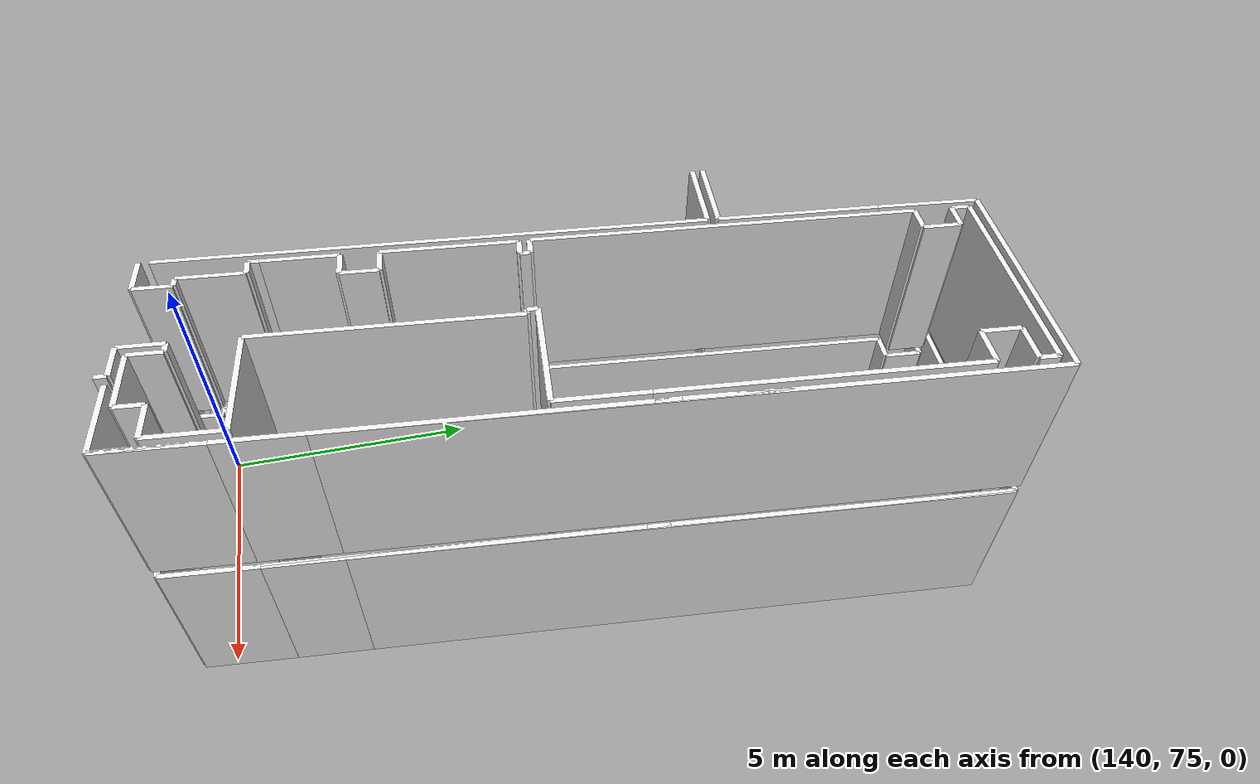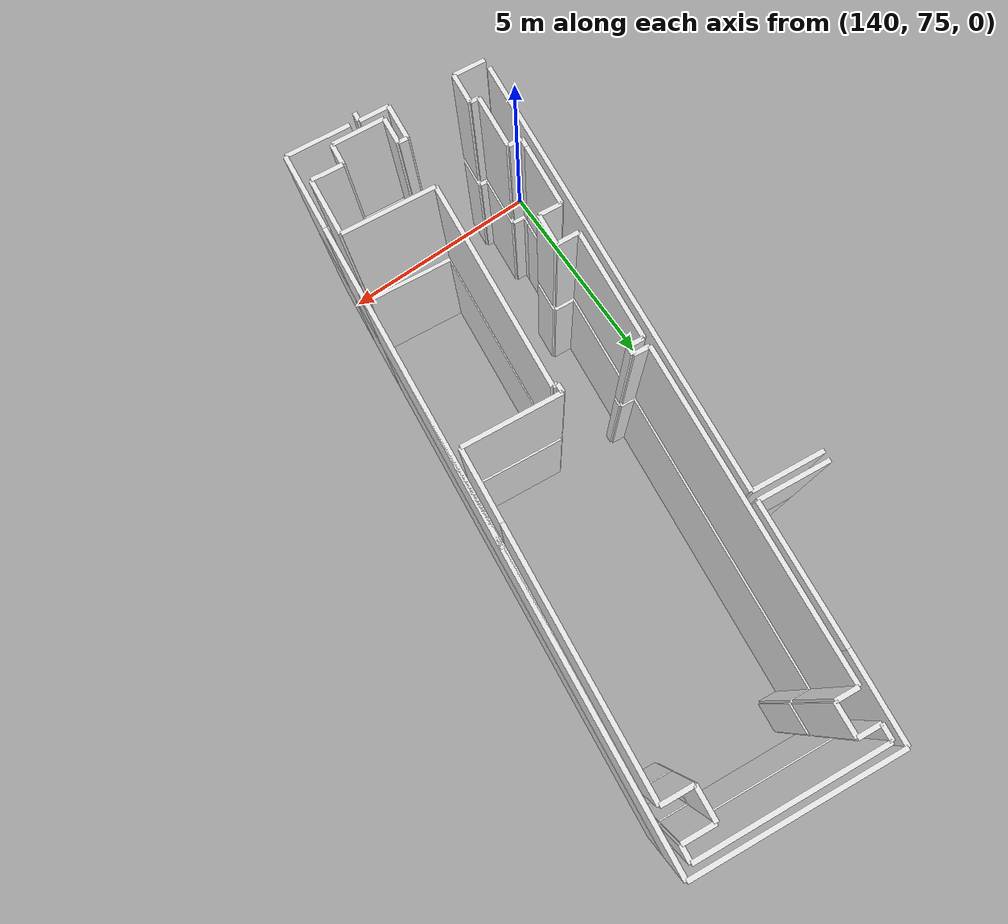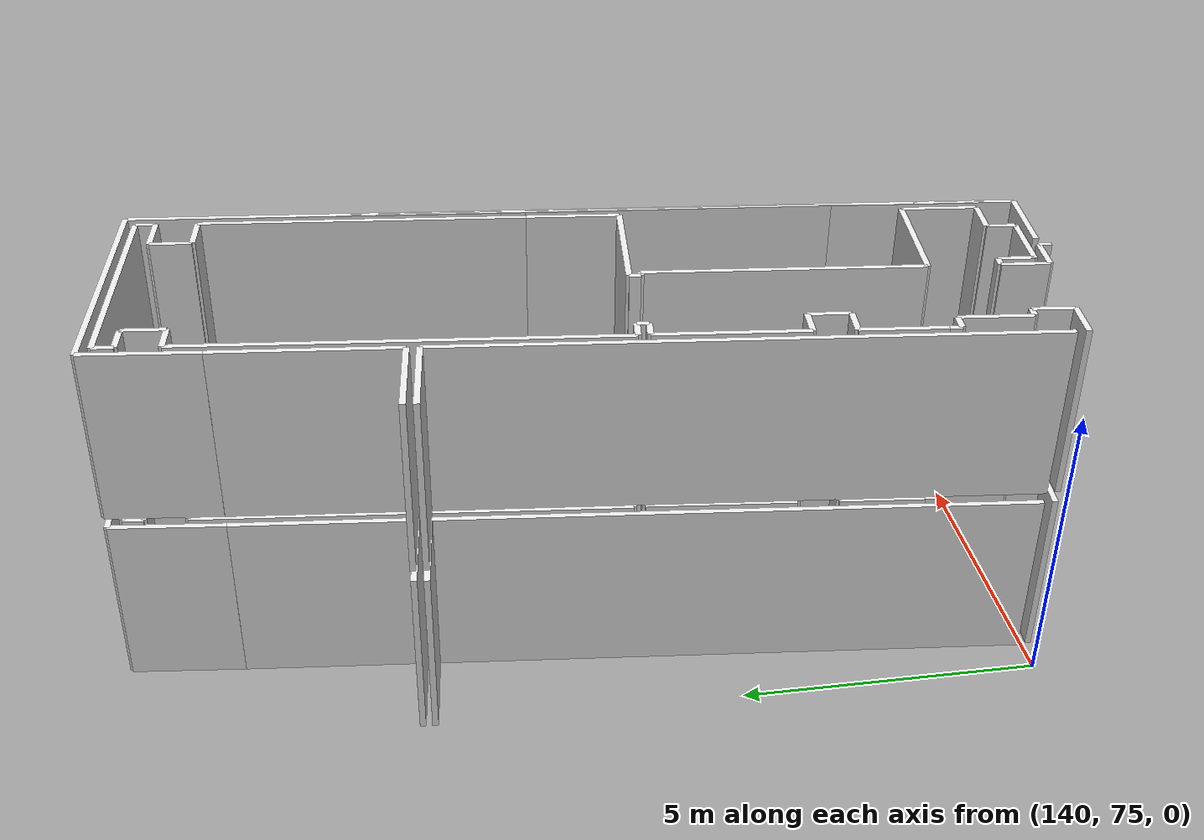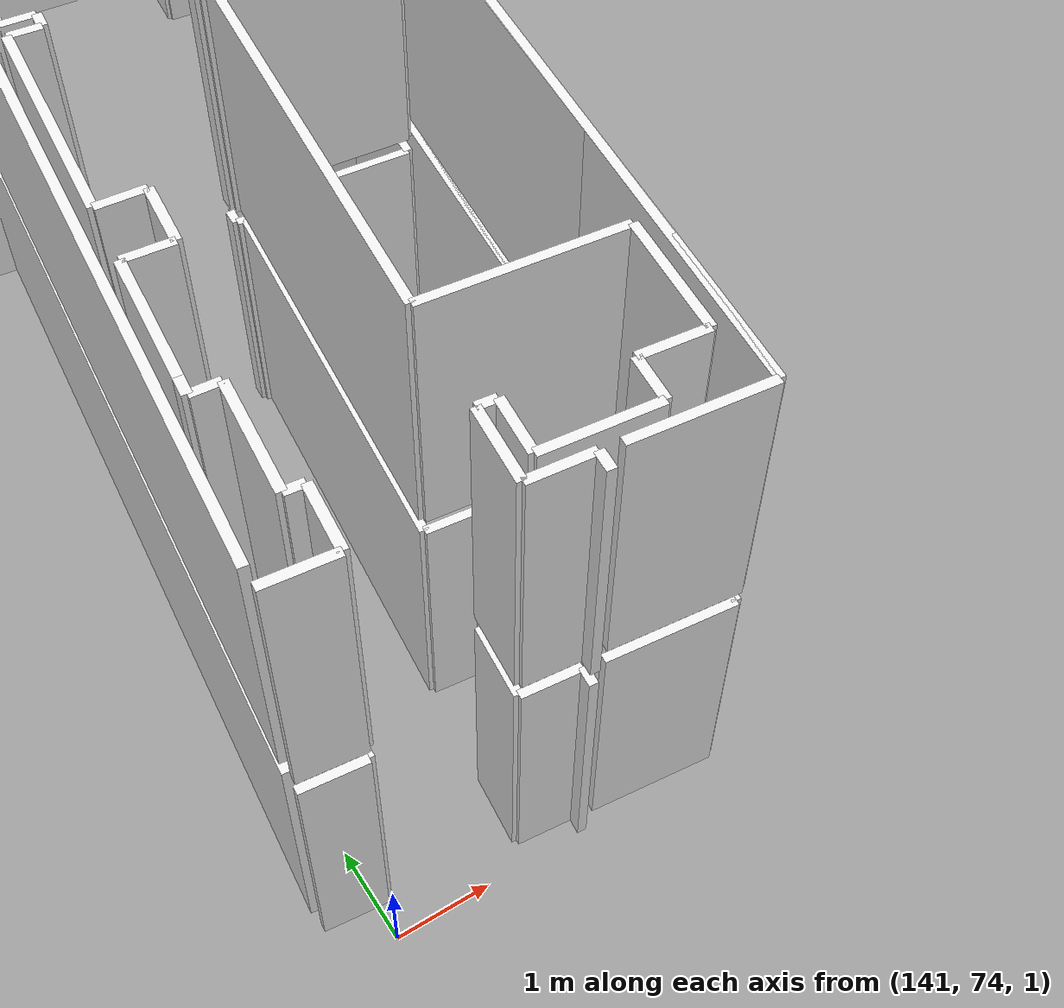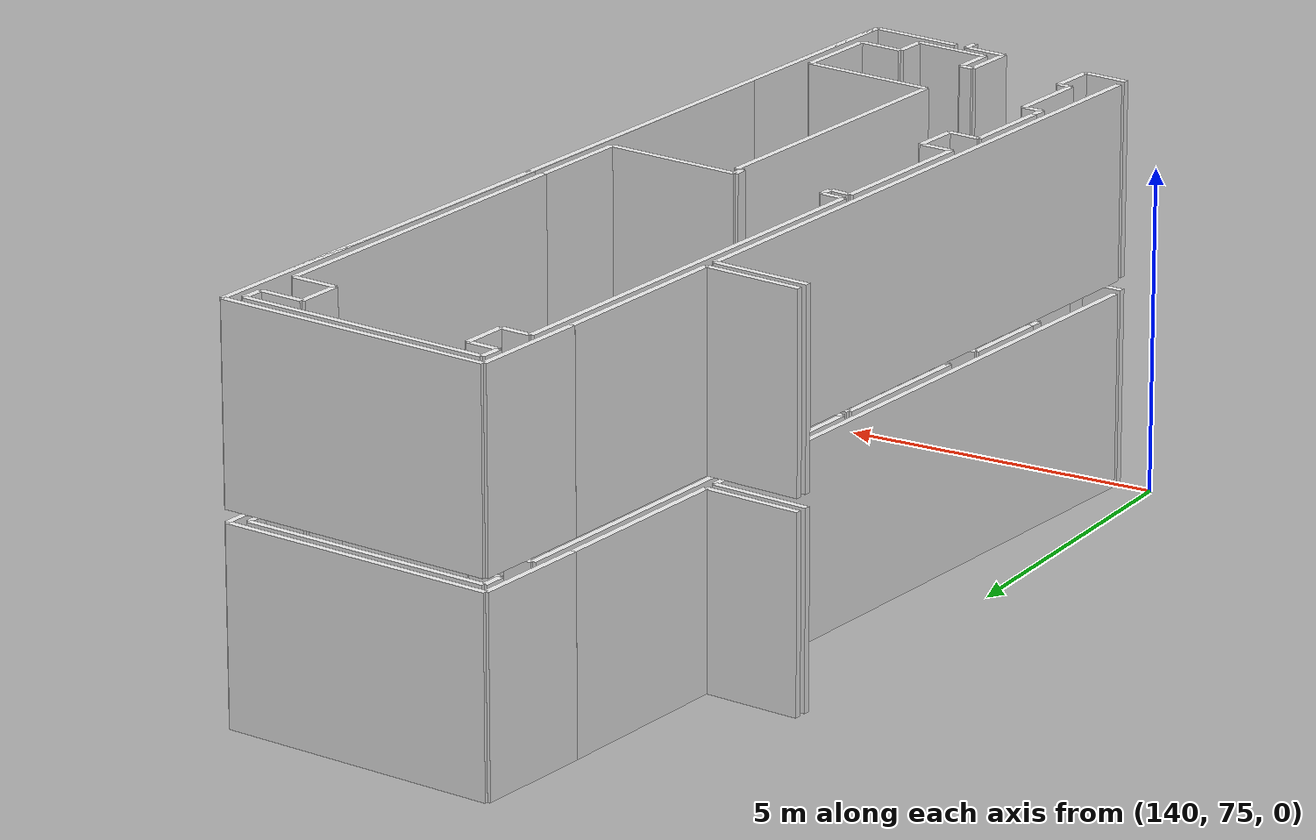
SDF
<sdf version="1.6">
 <world name="default">
  <model name="wall_140.8_85.0_0.0_link">
   <static>true</static>
   <pose>140.82499999998254 85.0 1.5 0 0 -0.10286148975795871</pose>
   <link name="link">
    <visual name="visual">
     <geometry><box><size>1.5582361823586293 0.1 3</size></box></geometry>
     <material>
      <script><uri>file://media/materials/scripts/gazebo.material</uri><name>Gazebo/White</name></script>
     </material>
    </visual>
   </link>
  </model>
  <model name="wall_141.1_80.0_0.0_link">
   <static>true</static>
   <pose>141.10499999998137 79.98999999999069 1.5 0 0 -1.670866626016522</pose>
   <link name="link">
    <visual name="visual">
     <geometry><box><size>9.909576176477497 0.1 3</size></box></geometry>
     <material>
      <script><uri>file://media/materials/scripts/gazebo.material</uri><name>Gazebo/White</name></script>
     </material>
    </visual>
   </link>
  </model>
  <model name="wall_142.9_75.4_0.0_link">
   <static>true</static>
   <pose>142.9100000000035 75.42999999993481 1.5 0 0 -0.09966865257760905</pose>
   <link name="link">
    <visual name="visual">
     <geometry><box><size>0.20099751243585498 0.1 3</size></box></geometry>
     <material>
      <script><uri>file://media/materials/scripts/gazebo.material</uri><name>Gazebo/White</name></script>
     </material>
    </visual>
   </link>
  </model>
  <model name="wall_143.0_75.1_0.0_link">
   <static>true</static>
   <pose>142.98000000001048 75.11999999987893 1.5 0 0 -1.6704649792668482</pose>
   <link name="link">
    <visual name="visual">
     <geometry><box><size>0.6029925373596918 0.1 3</size></box></geometry>
     <material>
      <script><uri>file://media/materials/scripts/gazebo.material</uri><name>Gazebo/White</name></script>
     </material>
    </visual>
   </link>
  </model>
  <model name="wall_143.5_74.8_0.0_link">
   <static>true</static>
   <pose>143.52499999999418 74.76499999989755 1.5 0 0 -0.09536204679293706</pose>
   <link name="link">
    <visual name="visual">
     <geometry><box><size>1.1552488908849852 0.1 3</size></box></geometry>
     <material>
      <script><uri>file://media/materials/scripts/gazebo.material</uri><name>Gazebo/White</name></script>
     </material>
    </visual>
   </link>
  </model>
  <model name="wall_144.1_75.0_0.0_link">
   <static>true</static>
   <pose>144.125 74.9550000000745 1.5 0 0 1.469107474983833</pose>
   <link name="link">
    <visual name="visual">
     <geometry><box><size>0.4925444144680799 0.1 3</size></box></geometry>
     <material>
      <script><uri>file://media/materials/scripts/gazebo.material</uri><name>Gazebo/White</name></script>
     </material>
    </visual>
   </link>
  </model>
  <model name="wall_144.5_75.2_0.0_link">
   <static>true</static>
   <pose>144.49500000002445 75.16500000003725 1.5 0 0 -0.10110337216347741</pose>
   <link name="link">
    <visual name="visual">
     <geometry><box><size>0.6935416354083843 0.1 3</size></box></geometry>
     <material>
      <script><uri>file://media/materials/scripts/gazebo.material</uri><name>Gazebo/White</name></script>
     </material>
    </visual>
   </link>
  </model>
  <model name="wall_144.9_75.8_0.0_link">
   <static>true</static>
   <pose>144.90499999999884 75.77499999990687 1.5 0 0 1.4703602147900217</pose>
   <link name="link">
    <visual name="visual">
     <geometry><box><size>1.2965338407007314 0.1 3</size></box></geometry>
     <material>
      <script><uri>file://media/materials/scripts/gazebo.material</uri><name>Gazebo/White</name></script>
     </material>
    </visual>
   </link>
  </model>
  <model name="wall_143.9_76.5_0.0_link">
   <static>true</static>
   <pose>143.94999999998254 76.52499999990687 1.5 0 0 3.039012801188522</pose>
   <link name="link">
    <visual name="visual">
     <geometry><box><size>2.050780339260853 0.1 3</size></box></geometry>
     <material>
      <script><uri>file://media/materials/scripts/gazebo.material</uri><name>Gazebo/White</name></script>
     </material>
    </visual>
   </link>
  </model>
  <model name="wall_143.2_78.9_0.0_link">
   <static>true</static>
   <pose>143.16500000000815 78.93999999994412 1.5 0 0 1.4694135127045715</pose>
   <link name="link">
    <visual name="visual">
     <geometry><box><size>4.6438453894440865 0.1 3</size></box></geometry>
     <material>
      <script><uri>file://media/materials/scripts/gazebo.material</uri><name>Gazebo/White</name></script>
     </material>
    </visual>
   </link>
  </model>
  <model name="wall_143.4_81.3_0.0_link">
   <static>true</static>
   <pose>143.35000000000582 81.25499999988824 1.5 0 0 3.041924003346254</pose>
   <link name="link">
    <visual name="visual">
     <geometry><box><size>0.10049875622371936 0.1 3</size></box></geometry>
     <material>
      <script><uri>file://media/materials/scripts/gazebo.material</uri><name>Gazebo/White</name></script>
     </material>
    </visual>
   </link>
  </model>
  <model name="wall_141.6_81.4_0.0_link">
   <static>true</static>
   <pose>141.63000000000466 81.43000000016764 1.5 0 0 3.0244839089037323</pose>
   <link name="link">
    <visual name="visual">
     <geometry><box><size>0.3423448553444534 0.1 3</size></box></geometry>
     <material>
      <script><uri>file://media/materials/scripts/gazebo.material</uri><name>Gazebo/White</name></script>
     </material>
    </visual>
   </link>
  </model>
  <model name="wall_141.3_80.2_0.0_link">
   <static>true</static>
   <pose>141.33500000002095 80.22500000009313 1.5 0 0 -1.6724851785502959</pose>
   <link name="link">
    <visual name="visual">
     <geometry><box><size>2.4627220713902527 0.1 3</size></box></geometry>
     <material>
      <script><uri>file://media/materials/scripts/gazebo.material</uri><name>Gazebo/White</name></script>
     </material>
    </visual>
   </link>
  </model>
  <model name="wall_141.5_79.0_0.0_link">
   <static>true</static>
   <pose>141.46000000002095 78.97999999998137 1.5 0 0 -0.07982998578626932</pose>
   <link name="link">
    <visual name="visual">
     <geometry><box><size>0.5015974481623489 0.1 3</size></box></geometry>
     <material>
      <script><uri>file://media/materials/scripts/gazebo.material</uri><name>Gazebo/White</name></script>
     </material>
    </visual>
   </link>
  </model>
  <model name="wall_141.7_78.6_0.0_link">
   <static>true</static>
   <pose>141.67500000001746 78.61499999999069 1.5 0 0 -1.6718996985493473</pose>
   <link name="link">
    <visual name="visual">
     <geometry><box><size>0.693541635321099 0.1 3</size></box></geometry>
     <material>
      <script><uri>file://media/materials/scripts/gazebo.material</uri><name>Gazebo/White</name></script>
     </material>
    </visual>
   </link>
  </model>
  <model name="wall_141.4_78.3_0.0_link">
   <static>true</static>
   <pose>141.39000000001397 78.2949999999255 1.5 0 0 3.0419240014674718</pose>
   <link name="link">
    <visual name="visual">
     <geometry><box><size>0.5024937810375105 0.1 3</size></box></geometry>
     <material>
      <script><uri>file://media/materials/scripts/gazebo.material</uri><name>Gazebo/White</name></script>
     </material>
    </visual>
   </link>
  </model>
  <model name="wall_141.1_77.6_0.0_link">
   <static>true</static>
   <pose>141.07000000000698 77.625 1.5 0 0 -1.671177229911867</pose>
   <link name="link">
    <visual name="visual">
     <geometry><box><size>1.3970325690805652 0.1 3</size></box></geometry>
     <material>
      <script><uri>file://media/materials/scripts/gazebo.material</uri><name>Gazebo/White</name></script>
     </material>
    </visual>
   </link>
  </model>
  <model name="wall_141.0_76.8_0.0_link">
   <static>true</static>
   <pose>140.9899999999907 76.8300000000745 1.5 0 0 -1.6704649792860586</pose>
   <link name="link">
    <visual name="visual">
     <geometry><box><size>0.20099751260961132 0.1 3</size></box></geometry>
     <material>
      <script><uri>file://media/materials/scripts/gazebo.material</uri><name>Gazebo/White</name></script>
     </material>
    </visual>
   </link>
  </model>
  <model name="wall_141.1_76.7_0.0_link">
   <static>true</static>
   <pose>141.13000000000466 76.71999999997206 1.5 0 0 -0.066568163827335</pose>
   <link name="link">
    <visual name="visual">
     <geometry><box><size>0.30066592761516014 0.1 3</size></box></geometry>
     <material>
      <script><uri>file://media/materials/scripts/gazebo.material</uri><name>Gazebo/White</name></script>
     </material>
    </visual>
   </link>
  </model>
  <model name="wall_141.2_76.1_0.0_link">
   <static>true</static>
   <pose>141.22000000000116 76.10999999986961 1.5 0 0 -1.6704649793148743</pose>
   <link name="link">
    <visual name="visual">
     <geometry><box><size>1.2059850747251755 0.1 3</size></box></geometry>
     <material>
      <script><uri>file://media/materials/scripts/gazebo.material</uri><name>Gazebo/White</name></script>
     </material>
    </visual>
   </link>
  </model>
  <model name="wall_141.3_75.5_0.0_link">
   <static>true</static>
   <pose>141.2599999999802 75.5 1.5 0 0 -0.09966865027235515</pose>
   <link name="link">
    <visual name="visual">
     <geometry><box><size>0.20099751238951993 0.1 3</size></box></geometry>
     <material>
      <script><uri>file://media/materials/scripts/gazebo.material</uri><name>Gazebo/White</name></script>
     </material>
    </visual>
   </link>
  </model>
  <model name="wall_141.3_75.1_0.0_link">
   <static>true</static>
   <pose>141.32499999998254 75.14500000001863 1.5 0 0 -1.6718996984815795</pose>
   <link name="link">
    <visual name="visual">
     <geometry><box><size>0.6935416357843824 0.1 3</size></box></geometry>
     <material>
      <script><uri>file://media/materials/scripts/gazebo.material</uri><name>Gazebo/White</name></script>
     </material>
    </visual>
   </link>
  </model>
  <model name="wall_140.9_74.8_0.0_link">
   <static>true</static>
   <pose>140.94000000000233 74.83499999996275 1.5 0 0 3.041924000670513</pose>
   <link name="link">
    <visual name="visual">
     <geometry><box><size>0.7034912934617817 0.1 3</size></box></geometry>
     <material>
      <script><uri>file://media/materials/scripts/gazebo.material</uri><name>Gazebo/White</name></script>
     </material>
    </visual>
   </link>
  </model>
  <model name="wall_143.4_74.5_0.0_link">
   <static>true</static>
   <pose>143.36999999999534 74.47500000009313 1.5 0 0 1.4758446203474973</pose>
   <link name="link">
    <visual name="visual">
     <geometry><box><size>0.21095023106197072 0.1 3</size></box></geometry>
     <material>
      <script><uri>file://media/materials/scripts/gazebo.material</uri><name>Gazebo/White</name></script>
     </material>
    </visual>
   </link>
  </model>
  <model name="wall_143.1_74.6_0.0_link">
   <static>true</static>
   <pose>143.05499999999302 74.61000000010245 1.5 0 0 3.0495458046444233</pose>
   <link name="link">
    <visual name="visual">
     <geometry><box><size>0.6527633568430243 0.1 3</size></box></geometry>
     <material>
      <script><uri>file://media/materials/scripts/gazebo.material</uri><name>Gazebo/White</name></script>
     </material>
    </visual>
   </link>
  </model>
  <model name="wall_142.8_75.0_0.0_link">
   <static>true</static>
   <pose>142.76999999998952 75.04000000003725 1.5 0 0 1.471127674260511</pose>
   <link name="link">
    <visual name="visual">
     <geometry><box><size>0.8039900495059528 0.1 3</size></box></geometry>
     <material>
      <script><uri>file://media/materials/scripts/gazebo.material</uri><name>Gazebo/White</name></script>
     </material>
    </visual>
   </link>
  </model>
  <model name="wall_143.3_81.4_0.0_link">
   <static>true</static>
   <pose>143.30499999999302 81.35499999998137 1.5 0 0 1.5182132652482727</pose>
   <link name="link">
    <visual name="visual">
     <geometry><box><size>0.19026297631410952 0.1 3</size></box></geometry>
     <material>
      <script><uri>file://media/materials/scripts/gazebo.material</uri><name>Gazebo/White</name></script>
     </material>
    </visual>
   </link>
  </model>
  <model name="wall_144.4_81.3_0.0_link">
   <static>true</static>
   <pose>144.38000000000466 81.34500000020489 1.5 0 0 -0.0978176596774659</pose>
   <link name="link">
    <visual name="visual">
     <geometry><box><size>2.1502790516684445 0.1 3</size></box></geometry>
     <material>
      <script><uri>file://media/materials/scripts/gazebo.material</uri><name>Gazebo/White</name></script>
     </material>
    </visual>
   </link>
  </model>
  <model name="wall_145.5_82.0_0.0_link">
   <static>true</static>
   <pose>145.52999999999884 82.03000000002794 1.5 0 0 1.4698745421188324</pose>
   <link name="link">
    <visual name="visual">
     <geometry><box><size>1.5880806020966798 0.1 3</size></box></geometry>
     <material>
      <script><uri>file://media/materials/scripts/gazebo.material</uri><name>Gazebo/White</name></script>
     </material>
    </visual>
   </link>
  </model>
  <model name="wall_145.9_85.6_0.0_link">
   <static>true</static>
   <pose>145.88999999998487 85.56999999983236 1.5 0 0 1.4693278202361642</pose>
   <link name="link">
    <visual name="visual">
     <geometry><box><size>5.528435583417554 0.1 3</size></box></geometry>
     <material>
      <script><uri>file://media/materials/scripts/gazebo.material</uri><name>Gazebo/White</name></script>
     </material>
    </visual>
   </link>
  </model>
  <model name="wall_145.8_88.4_0.0_link">
   <static>true</static>
   <pose>145.81999999997788 88.35499999998137 1.5 0 0 3.041924000678746</pose>
   <link name="link">
    <visual name="visual">
     <geometry><box><size>0.7034912935197005 0.1 3</size></box></geometry>
     <material>
      <script><uri>file://media/materials/scripts/gazebo.material</uri><name>Gazebo/White</name></script>
     </material>
    </visual>
   </link>
  </model>
  <model name="wall_145.5_88.7_0.0_link">
   <static>true</static>
   <pose>145.50499999997555 88.73999999999069 1.5 0 0 1.4711276742543362</pose>
   <link name="link">
    <visual name="visual">
     <geometry><box><size>0.7034912932011471 0.1 3</size></box></geometry>
     <material>
      <script><uri>file://media/materials/scripts/gazebo.material</uri><name>Gazebo/White</name></script>
     </material>
    </visual>
   </link>
  </model>
  <model name="wall_145.9_89.1_0.0_link">
   <static>true</static>
   <pose>145.88999999998487 89.05499999993481 1.5 0 0 -0.0996686522524036</pose>
   <link name="link">
    <visual name="visual">
     <geometry><box><size>0.7034912934733655 0.1 3</size></box></geometry>
     <material>
      <script><uri>file://media/materials/scripts/gazebo.material</uri><name>Gazebo/White</name></script>
     </material>
    </visual>
   </link>
  </model>
  <model name="wall_146.3_89.2_0.0_link">
   <static>true</static>
   <pose>146.2600000000093 89.18999999994412 1.5 0 0 1.4536875820691035</pose>
   <link name="link">
    <visual name="visual">
     <geometry><box><size>0.3423448552288355 0.1 3</size></box></geometry>
     <material>
      <script><uri>file://media/materials/scripts/gazebo.material</uri><name>Gazebo/White</name></script>
     </material>
    </visual>
   </link>
  </model>
  <model name="wall_144.3_89.6_0.0_link">
   <static>true</static>
   <pose>144.2850000000035 89.55999999982305 1.5 0 0 3.041675862170233</pose>
   <link name="link">
    <visual name="visual">
     <geometry><box><size>4.01000000003936 0.1 3</size></box></geometry>
     <material>
      <script><uri>file://media/materials/scripts/gazebo.material</uri><name>Gazebo/White</name></script>
     </material>
    </visual>
   </link>
  </model>
  <model name="wall_142.3_89.6_0.0_link">
   <static>true</static>
   <pose>142.26999999998952 89.58999999985099 1.5 0 0 -1.6879050713518278</pose>
   <link name="link">
    <visual name="visual">
     <geometry><box><size>0.34234485522203445 0.1 3</size></box></geometry>
     <material>
      <script><uri>file://media/materials/scripts/gazebo.material</uri><name>Gazebo/White</name></script>
     </material>
    </visual>
   </link>
  </model>
  <model name="wall_142.5_89.4_0.0_link">
   <static>true</static>
   <pose>142.5 89.39500000001863 1.5 0 0 -0.0996686521223214</pose>
   <link name="link">
    <visual name="visual">
     <geometry><box><size>0.5024937810375105 0.1 3</size></box></geometry>
     <material>
      <script><uri>file://media/materials/scripts/gazebo.material</uri><name>Gazebo/White</name></script>
     </material>
    </visual>
   </link>
  </model>
  <model name="wall_142.7_89.0_0.0_link">
   <static>true</static>
   <pose>142.7149999999965 89.02000000001863 1.5 0 0 -1.6704649792695925</pose>
   <link name="link">
    <visual name="visual">
     <geometry><box><size>0.7034912936644975 0.1 3</size></box></geometry>
     <material>
      <script><uri>file://media/materials/scripts/gazebo.material</uri><name>Gazebo/White</name></script>
     </material>
    </visual>
   </link>
  </model>
  <model name="wall_142.4_88.7_0.0_link">
   <static>true</static>
   <pose>142.42999999999302 88.69500000006519 1.5 0 0 3.0419240005453703</pose>
   <link name="link">
    <visual name="visual">
     <geometry><box><size>0.5024937810838455 0.1 3</size></box></geometry>
     <material>
      <script><uri>file://media/materials/scripts/gazebo.material</uri><name>Gazebo/White</name></script>
     </material>
    </visual>
   </link>
  </model>
  <model name="wall_141.8_85.2_0.0_link">
   <static>true</static>
   <pose>141.82000000000698 85.18000000016764 1.5 0 0 -1.6721428300555992</pose>
   <link name="link">
    <visual name="visual">
     <geometry><box><size>7.1165160015990105 0.1 3</size></box></geometry>
     <material>
      <script><uri>file://media/materials/scripts/gazebo.material</uri><name>Gazebo/White</name></script>
     </material>
    </visual>
   </link>
  </model>
  <model name="wall_141.6_81.6_0.0_link">
   <static>true</static>
   <pose>141.64000000001397 81.62000000011176 1.5 0 0 -0.11065722128037307</pose>
   <link name="link">
    <visual name="visual">
     <geometry><box><size>0.3622154055157262 0.1 3</size></box></geometry>
     <material>
      <script><uri>file://media/materials/scripts/gazebo.material</uri><name>Gazebo/White</name></script>
     </material>
    </visual>
   </link>
  </model>
  <model name="wall_141.8_81.5_0.0_link">
   <static>true</static>
   <pose>141.80999999999767 81.50500000012107 1.5 0 0 -1.675673265652709</pose>
   <link name="link">
    <visual name="visual">
     <geometry><box><size>0.19104973169180559 0.1 3</size></box></geometry>
     <material>
      <script><uri>file://media/materials/scripts/gazebo.material</uri><name>Gazebo/White</name></script>
     </material>
    </visual>
   </link>
  </model>
  <model name="wall_140.8_85.2_0.0_link">
   <static>true</static>
   <pose>140.84500000000116 85.19999999995343 1.5 0 0 -0.10286148946069955</pose>
   <link name="link">
    <visual name="visual">
     <geometry><box><size>1.558236182310815 0.1 3</size></box></geometry>
     <material>
      <script><uri>file://media/materials/scripts/gazebo.material</uri><name>Gazebo/White</name></script>
     </material>
    </visual>
   </link>
  </model>
  <model name="wall_141.8_86.6_0.0_link">
   <static>true</static>
   <pose>141.76999999998952 86.61499999999069 1.5 0 0 1.4707965484838321</pose>
   <link name="link">
    <visual name="visual">
     <geometry><box><size>3.005012478933323 0.1 3</size></box></geometry>
     <material>
      <script><uri>file://media/materials/scripts/gazebo.material</uri><name>Gazebo/White</name></script>
     </material>
    </visual>
   </link>
  </model>
  <model name="wall_144.3_74.5_0.0_link">
   <static>true</static>
   <pose>144.27999999999884 74.47999999998137 1.5 0 0 -0.09966865225652011</pose>
   <link name="link">
    <visual name="visual">
     <geometry><box><size>1.4069825868888122 0.1 3</size></box></geometry>
     <material>
      <script><uri>file://media/materials/scripts/gazebo.material</uri><name>Gazebo/White</name></script>
     </material>
    </visual>
   </link>
  </model>
  <model name="wall_145.1_75.3_0.0_link">
   <static>true</static>
   <pose>145.06999999997788 75.2750000001397 1.5 0 0 1.4671231190540195</pose>
   <link name="link">
    <visual name="visual">
     <geometry><box><size>1.7393389548713725 0.1 3</size></box></geometry>
     <material>
      <script><uri>file://media/materials/scripts/gazebo.material</uri><name>Gazebo/White</name></script>
     </material>
    </visual>
   </link>
  </model>
  <model name="wall_145.5_79.5_0.0_link">
   <static>true</static>
   <pose>145.48499999998603 79.46999999997206 1.5 0 0 1.473506851962698</pose>
   <link name="link">
    <visual name="visual">
     <geometry><box><size>6.691644042820307 0.1 3</size></box></geometry>
     <material>
      <script><uri>file://media/materials/scripts/gazebo.material</uri><name>Gazebo/White</name></script>
     </material>
    </visual>
   </link>
  </model>
  <model name="wall_145.8_83.0_0.0_link">
   <static>true</static>
   <pose>145.8299999999872 83.01000000000931 1.5 0 0 1.4758446205894842</pose>
   <link name="link">
    <visual name="visual">
     <geometry><box><size>0.42190046258198655 0.1 3</size></box></geometry>
     <material>
      <script><uri>file://media/materials/scripts/gazebo.material</uri><name>Gazebo/White</name></script>
     </material>
    </visual>
   </link>
  </model>
  <model name="wall_146.2_86.4_0.0_link">
   <static>true</static>
   <pose>146.17999999999302 86.38000000012107 1.5 0 0 1.4667431110995115</pose>
   <link name="link">
    <visual name="visual">
     <geometry><box><size>6.354368575863701 0.1 3</size></box></geometry>
     <material>
      <script><uri>file://media/materials/scripts/gazebo.material</uri><name>Gazebo/White</name></script>
     </material>
    </visual>
   </link>
  </model>
  <model name="wall_144.3_89.8_0.0_link">
   <static>true</static>
   <pose>144.32000000000698 89.76500000013039 1.5 0 0 3.0392121432977204</pose>
   <link name="link">
    <visual name="visual">
     <geometry><box><size>4.403055757108741 0.1 3</size></box></geometry>
     <material>
      <script><uri>file://media/materials/scripts/gazebo.material</uri><name>Gazebo/White</name></script>
     </material>
    </visual>
   </link>
  </model>
  <model name="wall_142.0_89.1_0.0_link">
   <static>true</static>
   <pose>142.02499999999418 89.05000000004657 1.5 0 0 -1.682037319054423</pose>
   <link name="link">
    <visual name="visual">
     <geometry><box><size>1.8916923643498365 0.1 3</size></box></geometry>
     <material>
      <script><uri>file://media/materials/scripts/gazebo.material</uri><name>Gazebo/White</name></script>
     </material>
    </visual>
   </link>
  </model>
  <model name="wall_145.7_82.0_0.0_link">
   <static>true</static>
   <pose>145.74499999999534 81.97500000009313 1.5 0 0 -1.6715773258821318</pose>
   <link name="link">
    <visual name="visual">
     <geometry><box><size>15.2071627858948 0.1 3</size></box></geometry>
     <material>
      <script><uri>file://media/materials/scripts/gazebo.material</uri><name>Gazebo/White</name></script>
     </material>
    </visual>
   </link>
  </model>
  <model name="wall_140.8_85.0_3.2_link">
   <static>true</static>
   <pose>140.82499999998254 85.0 4.7 0 0 -0.10286148975795871</pose>
   <link name="link">
    <visual name="visual">
     <geometry><box><size>1.5582361823586293 0.1 3</size></box></geometry>
     <material>
      <script><uri>file://media/materials/scripts/gazebo.material</uri><name>Gazebo/White</name></script>
     </material>
    </visual>
   </link>
  </model>
  <model name="wall_141.1_80.0_3.2_link">
   <static>true</static>
   <pose>141.10499999998137 79.98999999999069 4.7 0 0 -1.670866626016522</pose>
   <link name="link">
    <visual name="visual">
     <geometry><box><size>9.909576176477497 0.1 3</size></box></geometry>
     <material>
      <script><uri>file://media/materials/scripts/gazebo.material</uri><name>Gazebo/White</name></script>
     </material>
    </visual>
   </link>
  </model>
  <model name="wall_142.9_75.4_3.2_link">
   <static>true</static>
   <pose>142.9100000000035 75.42999999993481 4.7 0 0 -0.09966865257760905</pose>
   <link name="link">
    <visual name="visual">
     <geometry><box><size>0.20099751243585498 0.1 3</size></box></geometry>
     <material>
      <script><uri>file://media/materials/scripts/gazebo.material</uri><name>Gazebo/White</name></script>
     </material>
    </visual>
   </link>
  </model>
  <model name="wall_143.0_75.1_3.2_link">
   <static>true</static>
   <pose>142.98000000001048 75.11999999987893 4.7 0 0 -1.6704649792668482</pose>
   <link name="link">
    <visual name="visual">
     <geometry><box><size>0.6029925373596918 0.1 3</size></box></geometry>
     <material>
      <script><uri>file://media/materials/scripts/gazebo.material</uri><name>Gazebo/White</name></script>
     </material>
    </visual>
   </link>
  </model>
  <model name="wall_143.5_74.8_3.2_link">
   <static>true</static>
   <pose>143.52499999999418 74.76499999989755 4.7 0 0 -0.09536204679293706</pose>
   <link name="link">
    <visual name="visual">
     <geometry><box><size>1.1552488908849852 0.1 3</size></box></geometry>
     <material>
      <script><uri>file://media/materials/scripts/gazebo.material</uri><name>Gazebo/White</name></script>
     </material>
    </visual>
   </link>
  </model>
  <model name="wall_144.1_75.0_3.2_link">
   <static>true</static>
   <pose>144.125 74.9550000000745 4.7 0 0 1.469107474983833</pose>
   <link name="link">
    <visual name="visual">
     <geometry><box><size>0.4925444144680799 0.1 3</size></box></geometry>
     <material>
      <script><uri>file://media/materials/scripts/gazebo.material</uri><name>Gazebo/White</name></script>
     </material>
    </visual>
   </link>
  </model>
  <model name="wall_144.5_75.2_3.2_link">
   <static>true</static>
   <pose>144.49500000002445 75.16500000003725 4.7 0 0 -0.10110337216347741</pose>
   <link name="link">
    <visual name="visual">
     <geometry><box><size>0.6935416354083843 0.1 3</size></box></geometry>
     <material>
      <script><uri>file://media/materials/scripts/gazebo.material</uri><name>Gazebo/White</name></script>
     </material>
    </visual>
   </link>
  </model>
  <model name="wall_144.9_75.8_3.2_link">
   <static>true</static>
   <pose>144.90499999999884 75.77499999990687 4.7 0 0 1.4703602147900217</pose>
   <link name="link">
    <visual name="visual">
     <geometry><box><size>1.2965338407007314 0.1 3</size></box></geometry>
     <material>
      <script><uri>file://media/materials/scripts/gazebo.material</uri><name>Gazebo/White</name></script>
     </material>
    </visual>
   </link>
  </model>
  <model name="wall_143.9_76.5_3.2_link">
   <static>true</static>
   <pose>143.94999999998254 76.52499999990687 4.7 0 0 3.039012801188522</pose>
   <link name="link">
    <visual name="visual">
     <geometry><box><size>2.050780339260853 0.1 3</size></box></geometry>
     <material>
      <script><uri>file://media/materials/scripts/gazebo.material</uri><name>Gazebo/White</name></script>
     </material>
    </visual>
   </link>
  </model>
  <model name="wall_143.2_78.9_3.2_link">
   <static>true</static>
   <pose>143.16500000000815 78.93999999994412 4.7 0 0 1.4694135127045715</pose>
   <link name="link">
    <visual name="visual">
     <geometry><box><size>4.6438453894440865 0.1 3</size></box></geometry>
     <material>
      <script><uri>file://media/materials/scripts/gazebo.material</uri><name>Gazebo/White</name></script>
     </material>
    </visual>
   </link>
  </model>
  <model name="wall_143.4_81.3_3.2_link">
   <static>true</static>
   <pose>143.35000000000582 81.25499999988824 4.7 0 0 3.041924003346254</pose>
   <link name="link">
    <visual name="visual">
     <geometry><box><size>0.10049875622371936 0.1 3</size></box></geometry>
     <material>
      <script><uri>file://media/materials/scripts/gazebo.material</uri><name>Gazebo/White</name></script>
     </material>
    </visual>
   </link>
  </model>
  <model name="wall_141.6_81.4_3.2_link">
   <static>true</static>
   <pose>141.63000000000466 81.43000000016764 4.7 0 0 3.0244839089037323</pose>
   <link name="link">
    <visual name="visual">
     <geometry><box><size>0.3423448553444534 0.1 3</size></box></geometry>
     <material>
      <script><uri>file://media/materials/scripts/gazebo.material</uri><name>Gazebo/White</name></script>
     </material>
    </visual>
   </link>
  </model>
  <model name="wall_141.3_80.2_3.2_link">
   <static>true</static>
   <pose>141.33500000002095 80.22500000009313 4.7 0 0 -1.6724851785502959</pose>
   <link name="link">
    <visual name="visual">
     <geometry><box><size>2.4627220713902527 0.1 3</size></box></geometry>
     <material>
      <script><uri>file://media/materials/scripts/gazebo.material</uri><name>Gazebo/White</name></script>
     </material>
    </visual>
   </link>
  </model>
  <model name="wall_141.5_79.0_3.2_link">
   <static>true</static>
   <pose>141.46000000002095 78.97999999998137 4.7 0 0 -0.07982998578626932</pose>
   <link name="link">
    <visual name="visual">
     <geometry><box><size>0.5015974481623489 0.1 3</size></box></geometry>
     <material>
      <script><uri>file://media/materials/scripts/gazebo.material</uri><name>Gazebo/White</name></script>
     </material>
    </visual>
   </link>
  </model>
  <model name="wall_141.7_78.6_3.2_link">
   <static>true</static>
   <pose>141.67500000001746 78.61499999999069 4.7 0 0 -1.6718996985493473</pose>
   <link name="link">
    <visual name="visual">
     <geometry><box><size>0.693541635321099 0.1 3</size></box></geometry>
     <material>
      <script><uri>file://media/materials/scripts/gazebo.material</uri><name>Gazebo/White</name></script>
     </material>
    </visual>
   </link>
  </model>
  <model name="wall_141.4_78.3_3.2_link">
   <static>true</static>
   <pose>141.39000000001397 78.2949999999255 4.7 0 0 3.0419240014674718</pose>
   <link name="link">
    <visual name="visual">
     <geometry><box><size>0.5024937810375105 0.1 3</size></box></geometry>
     <material>
      <script><uri>file://media/materials/scripts/gazebo.material</uri><name>Gazebo/White</name></script>
     </material>
    </visual>
   </link>
  </model>
  <model name="wall_141.1_77.6_3.2_link">
   <static>true</static>
   <pose>141.07000000000698 77.625 4.7 0 0 -1.671177229911867</pose>
   <link name="link">
    <visual name="visual">
     <geometry><box><size>1.3970325690805652 0.1 3</size></box></geometry>
     <material>
      <script><uri>file://media/materials/scripts/gazebo.material</uri><name>Gazebo/White</name></script>
     </material>
    </visual>
   </link>
  </model>
  <model name="wall_141.0_76.8_3.2_link">
   <static>true</static>
   <pose>140.9899999999907 76.8300000000745 4.7 0 0 -1.6704649792860586</pose>
   <link name="link">
    <visual name="visual">
     <geometry><box><size>0.20099751260961132 0.1 3</size></box></geometry>
     <material>
      <script><uri>file://media/materials/scripts/gazebo.material</uri><name>Gazebo/White</name></script>
     </material>
    </visual>
   </link>
  </model>
  <model name="wall_141.1_76.7_3.2_link">
   <static>true</static>
   <pose>141.13000000000466 76.71999999997206 4.7 0 0 -0.066568163827335</pose>
   <link name="link">
    <visual name="visual">
     <geometry><box><size>0.30066592761516014 0.1 3</size></box></geometry>
     <material>
      <script><uri>file://media/materials/scripts/gazebo.material</uri><name>Gazebo/White</name></script>
     </material>
    </visual>
   </link>
  </model>
  <model name="wall_141.2_76.1_3.2_link">
   <static>true</static>
   <pose>141.22000000000116 76.10999999986961 4.7 0 0 -1.6704649793148743</pose>
   <link name="link">
    <visual name="visual">
     <geometry><box><size>1.2059850747251755 0.1 3</size></box></geometry>
     <material>
      <script><uri>file://media/materials/scripts/gazebo.material</uri><name>Gazebo/White</name></script>
     </material>
    </visual>
   </link>
  </model>
  <model name="wall_141.3_75.5_3.2_link">
   <static>true</static>
   <pose>141.2599999999802 75.5 4.7 0 0 -0.09966865027235515</pose>
   <link name="link">
    <visual name="visual">
     <geometry><box><size>0.20099751238951993 0.1 3</size></box></geometry>
     <material>
      <script><uri>file://media/materials/scripts/gazebo.material</uri><name>Gazebo/White</name></script>
     </material>
    </visual>
   </link>
  </model>
  <model name="wall_141.3_75.1_3.2_link">
   <static>true</static>
   <pose>141.32499999998254 75.14500000001863 4.7 0 0 -1.6718996984815795</pose>
   <link name="link">
    <visual name="visual">
     <geometry><box><size>0.6935416357843824 0.1 3</size></box></geometry>
     <material>
      <script><uri>file://media/materials/scripts/gazebo.material</uri><name>Gazebo/White</name></script>
     </material>
    </visual>
   </link>
  </model>
  <model name="wall_140.9_74.8_3.2_link">
   <static>true</static>
   <pose>140.94000000000233 74.83499999996275 4.7 0 0 3.041924000670513</pose>
   <link name="link">
    <visual name="visual">
     <geometry><box><size>0.7034912934617817 0.1 3</size></box></geometry>
     <material>
      <script><uri>file://media/materials/scripts/gazebo.material</uri><name>Gazebo/White</name></script>
     </material>
    </visual>
   </link>
  </model>
  <model name="wall_143.4_74.5_3.2_link">
   <static>true</static>
   <pose>143.36999999999534 74.47500000009313 4.7 0 0 1.4758446203474973</pose>
   <link name="link">
    <visual name="visual">
     <geometry><box><size>0.21095023106197072 0.1 3</size></box></geometry>
     <material>
      <script><uri>file://media/materials/scripts/gazebo.material</uri><name>Gazebo/White</name></script>
     </material>
    </visual>
   </link>
  </model>
  <model name="wall_143.1_74.6_3.2_link">
   <static>true</static>
   <pose>143.05499999999302 74.61000000010245 4.7 0 0 3.0495458046444233</pose>
   <link name="link">
    <visual name="visual">
     <geometry><box><size>0.6527633568430243 0.1 3</size></box></geometry>
     <material>
      <script><uri>file://media/materials/scripts/gazebo.material</uri><name>Gazebo/White</name></script>
     </material>
    </visual>
   </link>
  </model>
  <model name="wall_142.8_75.0_3.2_link">
   <static>true</static>
   <pose>142.76999999998952 75.04000000003725 4.7 0 0 1.471127674260511</pose>
   <link name="link">
    <visual name="visual">
     <geometry><box><size>0.8039900495059528 0.1 3</size></box></geometry>
     <material>
      <script><uri>file://media/materials/scripts/gazebo.material</uri><name>Gazebo/White</name></script>
     </material>
    </visual>
   </link>
  </model>
  <model name="wall_143.3_81.4_3.2_link">
   <static>true</static>
   <pose>143.30499999999302 81.35499999998137 4.7 0 0 1.5182132652482727</pose>
   <link name="link">
    <visual name="visual">
     <geometry><box><size>0.19026297631410952 0.1 3</size></box></geometry>
     <material>
      <script><uri>file://media/materials/scripts/gazebo.material</uri><name>Gazebo/White</name></script>
     </material>
    </visual>
   </link>
  </model>
  <model name="wall_144.4_81.3_3.2_link">
   <static>true</static>
   <pose>144.38000000000466 81.34500000020489 4.7 0 0 -0.0978176596774659</pose>
   <link name="link">
    <visual name="visual">
     <geometry><box><size>2.1502790516684445 0.1 3</size></box></geometry>
     <material>
      <script><uri>file://media/materials/scripts/gazebo.material</uri><name>Gazebo/White</name></script>
     </material>
    </visual>
   </link>
  </model>
  <model name="wall_145.5_82.0_3.2_link">
   <static>true</static>
   <pose>145.52999999999884 82.03000000002794 4.7 0 0 1.4698745421188324</pose>
   <link name="link">
    <visual name="visual">
     <geometry><box><size>1.5880806020966798 0.1 3</size></box></geometry>
     <material>
      <script><uri>file://media/materials/scripts/gazebo.material</uri><name>Gazebo/White</name></script>
     </material>
    </visual>
   </link>
  </model>
  <model name="wall_145.9_85.6_3.2_link">
   <static>true</static>
   <pose>145.88999999998487 85.56999999983236 4.7 0 0 1.4693278202361642</pose>
   <link name="link">
    <visual name="visual">
     <geometry><box><size>5.528435583417554 0.1 3</size></box></geometry>
     <material>
      <script><uri>file://media/materials/scripts/gazebo.material</uri><name>Gazebo/White</name></script>
     </material>
    </visual>
   </link>
  </model>
  <model name="wall_145.8_88.4_3.2_link">
   <static>true</static>
   <pose>145.81999999997788 88.35499999998137 4.7 0 0 3.041924000678746</pose>
   <link name="link">
    <visual name="visual">
     <geometry><box><size>0.7034912935197005 0.1 3</size></box></geometry>
     <material>
      <script><uri>file://media/materials/scripts/gazebo.material</uri><name>Gazebo/White</name></script>
     </material>
    </visual>
   </link>
  </model>
  <model name="wall_145.5_88.7_3.2_link">
   <static>true</static>
   <pose>145.50499999997555 88.73999999999069 4.7 0 0 1.4711276742543362</pose>
   <link name="link">
    <visual name="visual">
     <geometry><box><size>0.7034912932011471 0.1 3</size></box></geometry>
     <material>
      <script><uri>file://media/materials/scripts/gazebo.material</uri><name>Gazebo/White</name></script>
     </material>
    </visual>
   </link>
  </model>
  <model name="wall_145.9_89.1_3.2_link">
   <static>true</static>
   <pose>145.88999999998487 89.05499999993481 4.7 0 0 -0.0996686522524036</pose>
   <link name="link">
    <visual name="visual">
     <geometry><box><size>0.7034912934733655 0.1 3</size></box></geometry>
     <material>
      <script><uri>file://media/materials/scripts/gazebo.material</uri><name>Gazebo/White</name></script>
     </material>
    </visual>
   </link>
  </model>
  <model name="wall_146.3_89.2_3.2_link">
   <static>true</static>
   <pose>146.2600000000093 89.18999999994412 4.7 0 0 1.4536875820691035</pose>
   <link name="link">
    <visual name="visual">
     <geometry><box><size>0.3423448552288355 0.1 3</size></box></geometry>
     <material>
      <script><uri>file://media/materials/scripts/gazebo.material</uri><name>Gazebo/White</name></script>
     </material>
    </visual>
   </link>
  </model>
  <model name="wall_144.3_89.6_3.2_link">
   <static>true</static>
   <pose>144.2850000000035 89.55999999982305 4.7 0 0 3.041675862170233</pose>
   <link name="link">
    <visual name="visual">
     <geometry><box><size>4.01000000003936 0.1 3</size></box></geometry>
     <material>
      <script><uri>file://media/materials/scripts/gazebo.material</uri><name>Gazebo/White</name></script>
     </material>
    </visual>
   </link>
  </model>
  <model name="wall_142.3_89.6_3.2_link">
   <static>true</static>
   <pose>142.26999999998952 89.58999999985099 4.7 0 0 -1.6879050713518278</pose>
   <link name="link">
    <visual name="visual">
     <geometry><box><size>0.34234485522203445 0.1 3</size></box></geometry>
     <material>
      <script><uri>file://media/materials/scripts/gazebo.material</uri><name>Gazebo/White</name></script>
     </material>
    </visual>
   </link>
  </model>
  <model name="wall_142.5_89.4_3.2_link">
   <static>true</static>
   <pose>142.5 89.39500000001863 4.7 0 0 -0.0996686521223214</pose>
   <link name="link">
    <visual name="visual">
     <geometry><box><size>0.5024937810375105 0.1 3</size></box></geometry>
     <material>
      <script><uri>file://media/materials/scripts/gazebo.material</uri><name>Gazebo/White</name></script>
     </material>
    </visual>
   </link>
  </model>
  <model name="wall_142.7_89.0_3.2_link">
   <static>true</static>
   <pose>142.7149999999965 89.02000000001863 4.7 0 0 -1.6704649792695925</pose>
   <link name="link">
    <visual name="visual">
     <geometry><box><size>0.7034912936644975 0.1 3</size></box></geometry>
     <material>
      <script><uri>file://media/materials/scripts/gazebo.material</uri><name>Gazebo/White</name></script>
     </material>
    </visual>
   </link>
  </model>
  <model name="wall_142.4_88.7_3.2_link">
   <static>true</static>
   <pose>142.42999999999302 88.69500000006519 4.7 0 0 3.0419240005453703</pose>
   <link name="link">
    <visual name="visual">
     <geometry><box><size>0.5024937810838455 0.1 3</size></box></geometry>
     <material>
      <script><uri>file://media/materials/scripts/gazebo.material</uri><name>Gazebo/White</name></script>
     </material>
    </visual>
   </link>
  </model>
  <model name="wall_141.8_85.2_3.2_link">
   <static>true</static>
   <pose>141.82000000000698 85.18000000016764 4.7 0 0 -1.6721428300555992</pose>
   <link name="link">
    <visual name="visual">
     <geometry><box><size>7.1165160015990105 0.1 3</size></box></geometry>
     <material>
      <script><uri>file://media/materials/scripts/gazebo.material</uri><name>Gazebo/White</name></script>
     </material>
    </visual>
   </link>
  </model>
  <model name="wall_141.6_81.6_3.2_link">
   <static>true</static>
   <pose>141.64000000001397 81.62000000011176 4.7 0 0 -0.11065722128037307</pose>
   <link name="link">
    <visual name="visual">
     <geometry><box><size>0.3622154055157262 0.1 3</size></box></geometry>
     <material>
      <script><uri>file://media/materials/scripts/gazebo.material</uri><name>Gazebo/White</name></script>
     </material>
    </visual>
   </link>
  </model>
  <model name="wall_141.8_81.5_3.2_link">
   <static>true</static>
   <pose>141.80999999999767 81.50500000012107 4.7 0 0 -1.675673265652709</pose>
   <link name="link">
    <visual name="visual">
     <geometry><box><size>0.19104973169180559 0.1 3</size></box></geometry>
     <material>
      <script><uri>file://media/materials/scripts/gazebo.material</uri><name>Gazebo/White</name></script>
     </material>
    </visual>
   </link>
  </model>
  <model name="wall_140.8_85.2_3.2_link">
   <static>true</static>
   <pose>140.84500000000116 85.19999999995343 4.7 0 0 -0.10286148946069955</pose>
   <link name="link">
    <visual name="visual">
     <geometry><box><size>1.558236182310815 0.1 3</size></box></geometry>
     <material>
      <script><uri>file://media/materials/scripts/gazebo.material</uri><name>Gazebo/White</name></script>
     </material>
    </visual>
   </link>
  </model>
  <model name="wall_141.8_86.6_3.2_link">
   <static>true</static>
   <pose>141.76999999998952 86.61499999999069 4.7 0 0 1.4707965484838321</pose>
   <link name="link">
    <visual name="visual">
     <geometry><box><size>3.005012478933323 0.1 3</size></box></geometry>
     <material>
      <script><uri>file://media/materials/scripts/gazebo.material</uri><name>Gazebo/White</name></script>
     </material>
    </visual>
   </link>
  </model>
  <model name="wall_144.3_74.5_3.2_link">
   <static>true</static>
   <pose>144.27999999999884 74.47999999998137 4.7 0 0 -0.09966865225652011</pose>
   <link name="link">
    <visual name="visual">
     <geometry><box><size>1.4069825868888122 0.1 3</size></box></geometry>
     <material>
      <script><uri>file://media/materials/scripts/gazebo.material</uri><name>Gazebo/White</name></script>
     </material>
    </visual>
   </link>
  </model>
  <model name="wall_145.1_75.3_3.2_link">
   <static>true</static>
   <pose>145.06999999997788 75.2750000001397 4.7 0 0 1.4671231190540195</pose>
   <link name="link">
    <visual name="visual">
     <geometry><box><size>1.7393389548713725 0.1 3</size></box></geometry>
     <material>
      <script><uri>file://media/materials/scripts/gazebo.material</uri><name>Gazebo/White</name></script>
     </material>
    </visual>
   </link>
  </model>
  <model name="wall_145.5_79.5_3.2_link">
   <static>true</static>
   <pose>145.48499999998603 79.46999999997206 4.7 0 0 1.473506851962698</pose>
   <link name="link">
    <visual name="visual">
     <geometry><box><size>6.691644042820307 0.1 3</size></box></geometry>
     <material>
      <script><uri>file://media/materials/scripts/gazebo.material</uri><name>Gazebo/White</name></script>
     </material>
    </visual>
   </link>
  </model>
  <model name="wall_145.8_83.0_3.2_link">
   <static>true</static>
   <pose>145.8299999999872 83.01000000000931 4.7 0 0 1.4758446205894842</pose>
   <link name="link">
    <visual name="visual">
     <geometry><box><size>0.42190046258198655 0.1 3</size></box></geometry>
     <material>
      <script><uri>file://media/materials/scripts/gazebo.material</uri><name>Gazebo/White</name></script>
     </material>
    </visual>
   </link>
  </model>
  <model name="wall_146.2_86.4_3.2_link">
   <static>true</static>
   <pose>146.17999999999302 86.38000000012107 4.7 0 0 1.4667431110995115</pose>
   <link name="link">
    <visual name="visual">
     <geometry><box><size>6.354368575863701 0.1 3</size></box></geometry>
     <material>
      <script><uri>file://media/materials/scripts/gazebo.material</uri><name>Gazebo/White</name></script>
     </material>
    </visual>
   </link>
  </model>
  <model name="wall_144.3_89.8_3.2_link">
   <static>true</static>
   <pose>144.32000000000698 89.76500000013039 4.7 0 0 3.0392121432977204</pose>
   <link name="link">
    <visual name="visual">
     <geometry><box><size>4.403055757108741 0.1 3</size></box></geometry>
     <material>
      <script><uri>file://media/materials/scripts/gazebo.material</uri><name>Gazebo/White</name></script>
     </material>
    </visual>
   </link>
  </model>
  <model name="wall_142.0_89.1_3.2_link">
   <static>true</static>
   <pose>142.02499999999418 89.05000000004657 4.7 0 0 -1.682037319054423</pose>
   <link name="link">
    <visual name="visual">
     <geometry><box><size>1.8916923643498365 0.1 3</size></box></geometry>
     <material>
      <script><uri>file://media/materials/scripts/gazebo.material</uri><name>Gazebo/White</name></script>
     </material>
    </visual>
   </link>
  </model>
  <model name="wall_145.7_82.0_3.2_link">
   <static>true</static>
   <pose>145.74499999999534 81.97500000009313 4.7 0 0 -1.6715773258821318</pose>
   <link name="link">
    <visual name="visual">
     <geometry><box><size>15.2071627858948 0.1 3</size></box></geometry>
     <material>
      <script><uri>file://media/materials/scripts/gazebo.material</uri><name>Gazebo/White</name></script>
     </material>
    </visual>
   </link>
  </model>
 </world>
</sdf>
